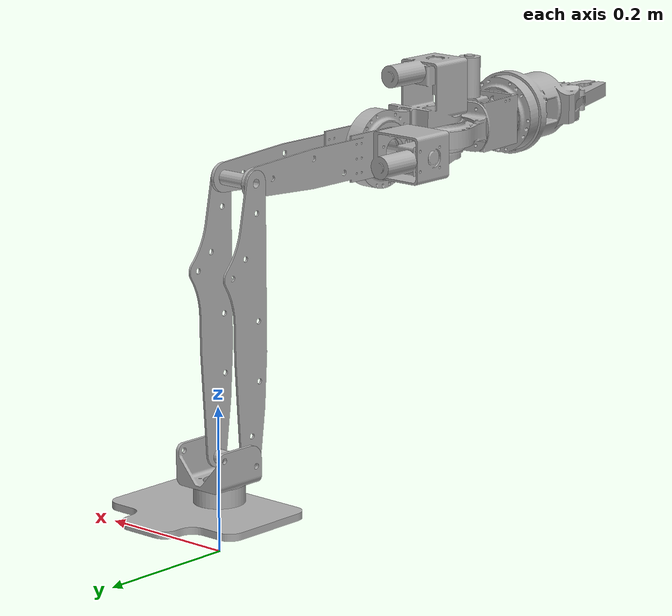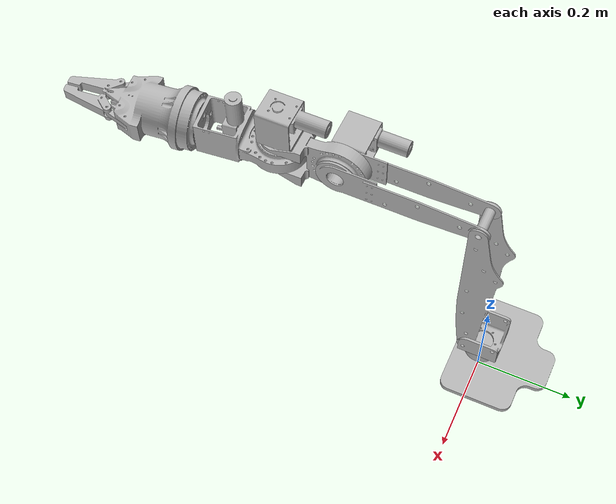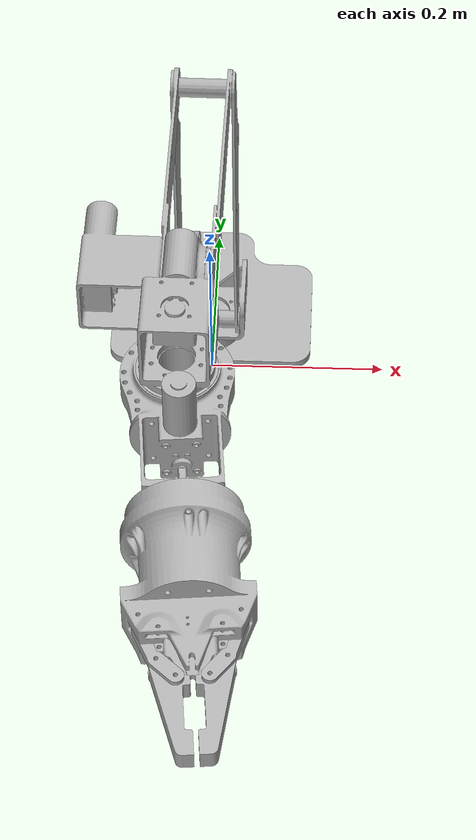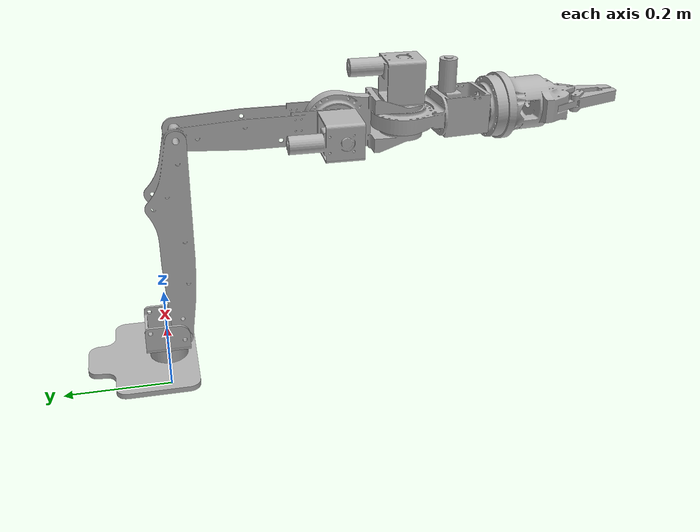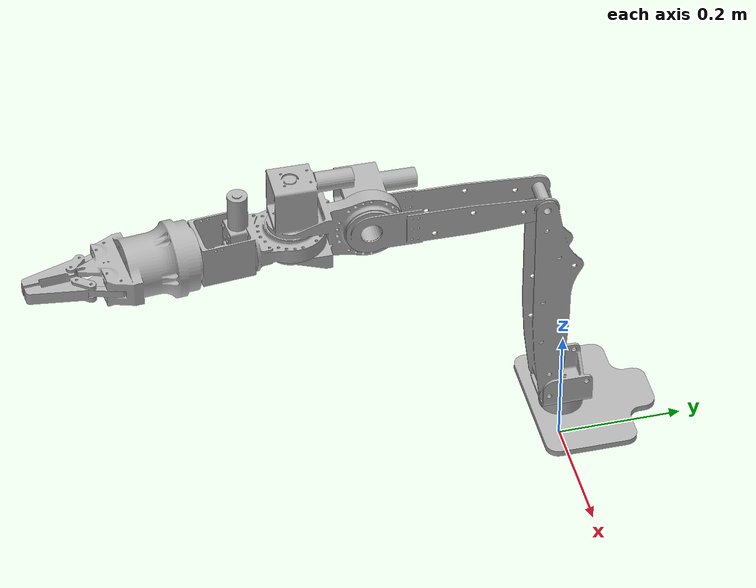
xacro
<?xml version="1.0" ?>
<robot name="arm_21_deneme11" xmlns:xacro="http://www.ros.org/wiki/xacro">

<xacro:include filename="$(find arm_21_gazebo_new)/urdf/materials.xacro" />
<xacro:include filename="$(find arm_21_gazebo_new)/urdf/arm_21_deneme11.trans" />
<xacro:include filename="$(find arm_21_gazebo_new)/urdf/arm_21_deneme11.gazebo" />

<link name="world"> </link>

<joint name="dummy_joint" type="fixed">
  <origin xyz="0 0 0.06" rpy="0 0 0"/>
  <parent link="world"/>
  <child link="base_link"/>
</joint>

<link name="base_link">
  <inertial>
    <origin rpy="0 0 0" xyz="-1.9055883092353217e-17 0.02811918461306822 0.008527710397076933"/>
    <mass value="3.7466295181997897"/>
    <inertia ixx="0.00892" ixy="-0.0" ixz="-0.0" iyy="0.012175" iyz="0.000372" izz="0.020597"/>
  </inertial>
  <visual>
    <origin rpy="0 0 0" xyz="0 0 0"/>
    <geometry>
      <mesh filename="package://arm_21_gazebo_new/meshes/base_link.stl" scale="0.001 0.001 0.001"/>
    </geometry>
    <material name="silver"/>
  </visual>
  <collision>
    <origin rpy="0 0 0" xyz="0 0 0"/>
    <geometry>
      <mesh filename="package://arm_21_gazebo_new/meshes/base_link.stl" scale="0.001 0.001 0.001"/>
    </geometry>
  </collision>
</link>

<link name="1-2link_1">
  <inertial>
    <origin rpy="0 0 0" xyz="2.6013246051030838e-05 0.003329489948270974 0.019317690174676314"/>
    <mass value="0.17491123957276383"/>
    <inertia ixx="0.000157" ixy="1e-06" ixz="0.0" iyy="0.000235" iyz="1e-06" izz="0.000295"/>
  </inertial>
  <visual>
    <origin rpy="0 0 0" xyz="-0.0 -0.0 -0.035"/>
    <geometry>
      <mesh filename="package://arm_21_gazebo_new/meshes/1-2link_1.stl" scale="0.001 0.001 0.001"/>
    </geometry>
    <material name="silver"/>
  </visual>
  <collision>
    <origin rpy="0 0 0" xyz="-0.0 -0.0 -0.035"/>
    <geometry>
      <mesh filename="package://arm_21_gazebo_new/meshes/1-2link_1.stl" scale="0.001 0.001 0.001"/>
    </geometry>
  </collision>
</link>

<link name="2-3link_v3_1">
  <inertial>
    <origin rpy="0 0 0" xyz="-0.03500381800112335 -0.00029381739515192684 0.19084976893009542"/>
    <mass value="1.1803943123209755"/>
    <inertia ixx="0.018634" ixy="6e-06" ixz="3e-06" iyy="0.019382" iyz="0.00037" izz="0.001339"/>
  </inertial>
  <visual>
    <origin rpy="0 0 0" xyz="-0.034765 0.030273 -0.06"/>
    <geometry>
      <mesh filename="package://arm_21_gazebo_new/meshes/2-3link_v3_1.stl" scale="0.001 0.001 0.001"/>
    </geometry>
    <material name="silver"/>
  </visual>
  <collision>
    <origin rpy="0 0 0" xyz="-0.034765 0.030273 -0.06"/>
    <geometry>
      <mesh filename="package://arm_21_gazebo_new/meshes/2-3link_v3_1.stl" scale="0.001 0.001 0.001"/>
    </geometry>
  </collision>
</link>

<link name="3-4link_v2_1">
  <inertial>
    <origin rpy="0 0 0" xyz="-0.0027415819192649765 -0.23439310518470569 0.001167838784957631"/>
    <mass value="3.3009486749940713"/>
    <inertia ixx="0.017426" ixy="-0.001403" ixz="8e-06" iyy="0.007347" iyz="7.8e-05" izz="0.022503"/>
  </inertial>
  <visual>
    <origin rpy="0 0 0" xyz="0.030322 0.041088 -0.440164"/>
    <geometry>
      <mesh filename="package://arm_21_gazebo_new/meshes/3-4link_v2_1.stl" scale="0.001 0.001 0.001"/>
    </geometry>
    <material name="silver"/>
  </visual>
  <collision>
    <origin rpy="0 0 0" xyz="0.030322 0.041088 -0.440164"/>
    <geometry>
      <mesh filename="package://arm_21_gazebo_new/meshes/3-4link_v2_1.stl" scale="0.001 0.001 0.001"/>
    </geometry>
  </collision>
</link>

<link name="4-5link_v3_1">
  <inertial>
    <origin rpy="0 0 0" xyz="0.019419899577565024 -0.0884803339861499 0.025453777760016172"/>
    <mass value="1.5256666779812347"/>
    <inertia ixx="0.006381" ixy="-2.7e-05" ixz="6e-06" iyy="0.003645" iyz="0.000243" izz="0.003797"/>
  </inertial>
  <visual>
    <origin rpy="0 0 0" xyz="0.024447 0.313139 -0.441513"/>
    <geometry>
      <mesh filename="package://arm_21_gazebo_new/meshes/4-5link_v3_1.stl" scale="0.001 0.001 0.001"/>
    </geometry>
    <material name="silver"/>
  </visual>
  <collision>
    <origin rpy="0 0 0" xyz="0.024447 0.313139 -0.441513"/>
    <geometry>
      <mesh filename="package://arm_21_gazebo_new/meshes/4-5link_v3_1.stl" scale="0.001 0.001 0.001"/>
    </geometry>
  </collision>
</link>

<link name="5-6link_v1_1">
  <inertial>
    <origin rpy="0 0 0" xyz="0.010207324246630586 -0.10810954343040219 -0.011634547498424075"/>
    <mass value="1.5060673111851792"/>
    <inertia ixx="0.006844" ixy="0.000478" ixz="1.8e-05" iyy="0.001825" iyz="-0.000195" izz="0.006731"/>
  </inertial>
  <visual>
    <origin rpy="0 0 0" xyz="0.005378 0.432298 -0.463477"/>
    <geometry>
      <mesh filename="package://arm_21_gazebo_new/meshes/5-6link_v1_1.stl" scale="0.001 0.001 0.001"/>
    </geometry>
    <material name="silver"/>
  </visual>
  <collision>
    <origin rpy="0 0 0" xyz="0.005378 0.432298 -0.463477"/>
    <geometry>
      <mesh filename="package://arm_21_gazebo_new/meshes/5-6link_v1_1.stl" scale="0.001 0.001 0.001"/>
    </geometry>
  </collision>
</link>

<link name="6-grripperlink_v1_1">
  <inertial>
    <origin rpy="0 0 0" xyz="0.009063943912298556 -0.0798714524122075 -2.509171872339122e-05"/>
    <mass value="0.6105009401562621"/>
    <inertia ixx="0.001361" ixy="2.7e-05" ixz="-0.0" iyy="0.001035" iyz="-0.0" izz="0.001479"/>
  </inertial>
  <visual>
    <origin rpy="0 0 0" xyz="-0.008726 0.581628 -0.445681"/>
    <geometry>
      <mesh filename="package://arm_21_gazebo_new/meshes/6-grripperlink_v1_1.stl" scale="0.001 0.001 0.001"/>
    </geometry>
    <material name="silver"/>
  </visual>
  <collision>
    <origin rpy="0 0 0" xyz="-0.008726 0.581628 -0.445681"/>
    <geometry>
      <mesh filename="package://arm_21_gazebo_new/meshes/6-grripperlink_v1_1.stl" scale="0.001 0.001 0.001"/>
    </geometry>
  </collision>
</link>

<link name="parmak1_1">
  <inertial>
    <origin rpy="0 0 0" xyz="0.029329275874303524 -0.06651209160959093 -0.0060799749590472185"/>
    <mass value="0.41896285769214303"/>
    <inertia ixx="0.000601" ixy="0.000174" ixz="-0.0" iyy="9.3e-05" iyz="0.0" izz="0.000658"/>
  </inertial>
  <visual>
    <origin rpy="0 0 0" xyz="0.023993 0.713792 -0.45189"/>
    <geometry>
      <mesh filename="package://arm_21_gazebo_new/meshes/parmak1_1.stl" scale="0.001 0.001 0.001"/>
    </geometry>
    <material name="silver"/>
  </visual>
  <collision>
    <origin rpy="0 0 0" xyz="0.023993 0.713792 -0.45189"/>
    <geometry>
      <mesh filename="package://arm_21_gazebo_new/meshes/parmak1_1.stl" scale="0.001 0.001 0.001"/>
    </geometry>
  </collision>
</link>

<link name="parmak2_1">
  <inertial>
    <origin rpy="0 0 0" xyz="-0.016358594553712157 -0.07082690546093462 -0.006162810800542484"/>
    <mass value="0.41896285769214303"/>
    <inertia ixx="0.000647" ixy="-6.8e-05" ixz="-0.0" iyy="4.6e-05" iyz="-0.0" izz="0.000658"/>
  </inertial>
  <visual>
    <origin rpy="0 0 0" xyz="-0.065608 0.70533 -0.451893"/>
    <geometry>
      <mesh filename="package://arm_21_gazebo_new/meshes/parmak2_1.stl" scale="0.001 0.001 0.001"/>
    </geometry>
    <material name="silver"/>
  </visual>
  <collision>
    <origin rpy="0 0 0" xyz="-0.065608 0.70533 -0.451893"/>
    <geometry>
      <mesh filename="package://arm_21_gazebo_new/meshes/parmak2_1.stl" scale="0.001 0.001 0.001"/>
    </geometry>
  </collision>
</link>

<link name="end_effector">
  <visual>
    <origin xyz="0 0 0" rpy="0 0 0" />
    <geometry>
      <box size="0.005 0.005 0.005" />
    </geometry>
    <material name="green" />
  </visual>
</link>

<joint name="axis1" type="continuous">
  <origin rpy="0 0 0" xyz="0.0 0.0 0.035"/>
  <parent link="base_link"/>
  <child link="1-2link_1"/>
  <axis xyz="0.0 0.0 1.0"/>
</joint>

<joint name="axis2" type="continuous">
  <origin rpy="0 0 0" xyz="0.034765 -0.030273 0.025"/>
  <parent link="1-2link_1"/>
  <child link="2-3link_v3_1"/>
  <axis xyz="-0.999969 0.007813 0.0"/>
</joint>

<joint name="axis3" type="continuous">
  <origin rpy="0 0 0" xyz="-0.065087 -0.010815 0.380164"/>
  <parent link="2-3link_v3_1"/>
  <child link="3-4link_v2_1"/>
  <axis xyz="0.999969 -0.007813 -0.0"/>
</joint>

<joint name="axis4" type="continuous">
  <origin rpy="0 0 0" xyz="0.005875 -0.272051 0.001349"/>
  <parent link="3-4link_v2_1"/>
  <child link="4-5link_v3_1"/>
  <axis xyz="-0.999969 0.007813 0.0"/>
</joint>

<joint name="axis5" type="continuous">
  <origin rpy="0 0 0" xyz="0.019069 -0.119159 0.021964"/>
  <parent link="4-5link_v3_1"/>
  <child link="5-6link_v1_1"/>
  <axis xyz="-2e-06 -0.000308 1.0"/>
</joint>

<joint name="axis6" type="continuous">
  <origin rpy="0 0 0" xyz="0.014104 -0.14933 -0.017796"/>
  <parent link="5-6link_v1_1"/>
  <child link="6-grripperlink_v1_1"/>
  <axis xyz="-0.094022 0.99557 0.000306"/>
</joint>

<joint name="axisparmak1" type="continuous">
  <origin rpy="0 0 0" xyz="-0.032719 -0.132164 0.006209"/>
  <parent link="6-grripperlink_v1_1"/>
  <child link="parmak1_1"/>
  <axis xyz="2e-06 0.000308 -1.0"/>
</joint>

<joint name="axisparmak2" type="continuous">
  <origin rpy="0 0 0" xyz="0.056882 -0.123702 0.006212"/>
  <parent link="6-grripperlink_v1_1"/>
  <child link="parmak2_1"/>
  <axis xyz="2e-06 0.000308 -1.0"/>
</joint>

<joint name="center_gripper" type="fixed">
  <origin rpy="0 0 0" xyz="0.01208 -0.127933 0.0062105"/>
  <parent link="6-grripperlink_v1_1"/>
  <child link="end_effector"/>
</joint>

</robot>

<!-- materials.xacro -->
<robot name="arm_21_deneme11" xmlns:xacro="http://www.ros.org/wiki/xacro" >

<material name="silver">
  <color rgba="0.700 0.700 0.700 1.000"/>
</material>

</robot>

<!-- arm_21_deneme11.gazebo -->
<robot name="arm_21_deneme11" xmlns:xacro="http://www.ros.org/wiki/xacro" >

<xacro:property name="body_color" value="Gazebo/Silver" />

<gazebo>
  <plugin filename="libgazebo_ros_control.so" name="control"/>
</gazebo>
<gazebo reference="base_link">
  <material>${body_color}</material>
  <mu1>0.2</mu1>
  <mu2>0.2</mu2>
  <selfCollide>true</selfCollide>
  <gravity>true</gravity>
</gazebo>

<gazebo reference="1-2link_1">
  <material>${body_color}</material>
  <mu1>0.2</mu1>
  <mu2>0.2</mu2>
  <selfCollide>true</selfCollide>
</gazebo>

<gazebo reference="2-3link_v3_1">
  <material>${body_color}</material>
  <mu1>0.2</mu1>
  <mu2>0.2</mu2>
  <selfCollide>true</selfCollide>
</gazebo>

<gazebo reference="3-4link_v2_1">
  <material>${body_color}</material>
  <mu1>0.2</mu1>
  <mu2>0.2</mu2>
  <selfCollide>true</selfCollide>
</gazebo>

<gazebo reference="4-5link_v3_1">
  <material>${body_color}</material>
  <mu1>0.2</mu1>
  <mu2>0.2</mu2>
  <selfCollide>true</selfCollide>
</gazebo>

<gazebo reference="5-6link_v1_1">
  <material>${body_color}</material>
  <mu1>0.2</mu1>
  <mu2>0.2</mu2>
  <selfCollide>true</selfCollide>
</gazebo>

<gazebo reference="6-grripperlink_v1_1">
  <material>${body_color}</material>
  <mu1>0.2</mu1>
  <mu2>0.2</mu2>
  <selfCollide>true</selfCollide>
</gazebo>

<gazebo reference="parmak1_1">
  <material>${body_color}</material>
  <mu1>0.2</mu1>
  <mu2>0.2</mu2>
  <selfCollide>true</selfCollide>
</gazebo>

<gazebo reference="parmak2_1">
  <material>${body_color}</material>
  <mu1>0.2</mu1>
  <mu2>0.2</mu2>
  <selfCollide>true</selfCollide>
</gazebo>

</robot>
